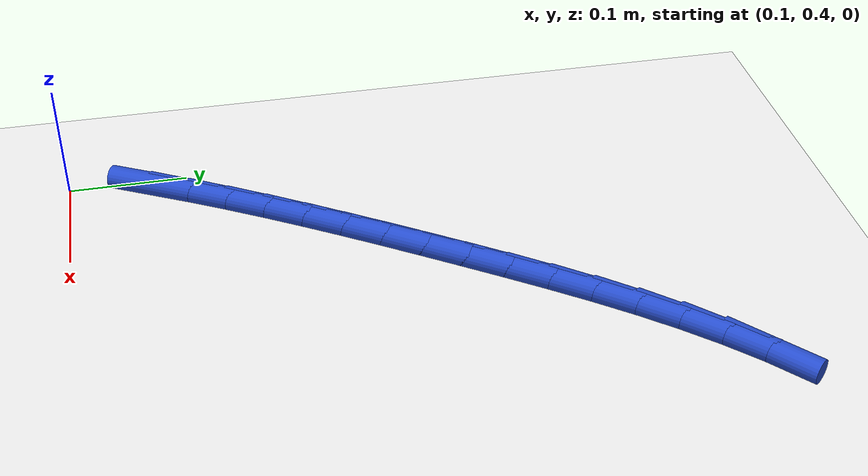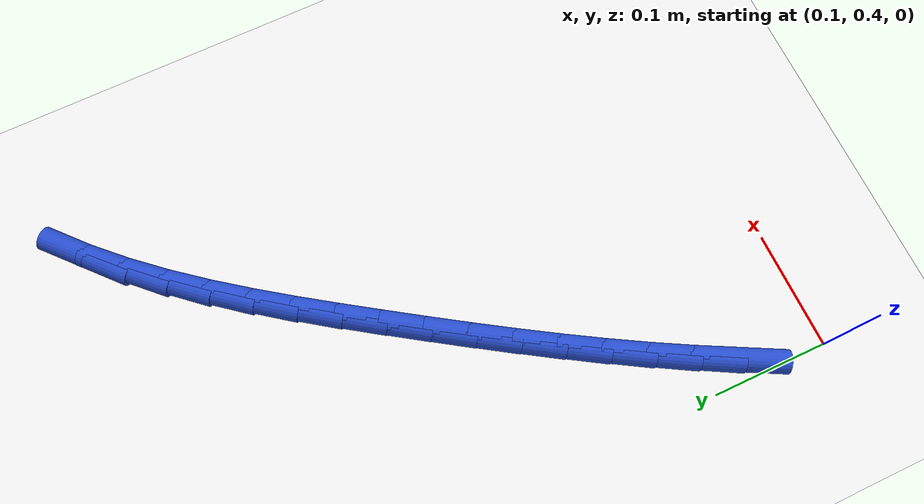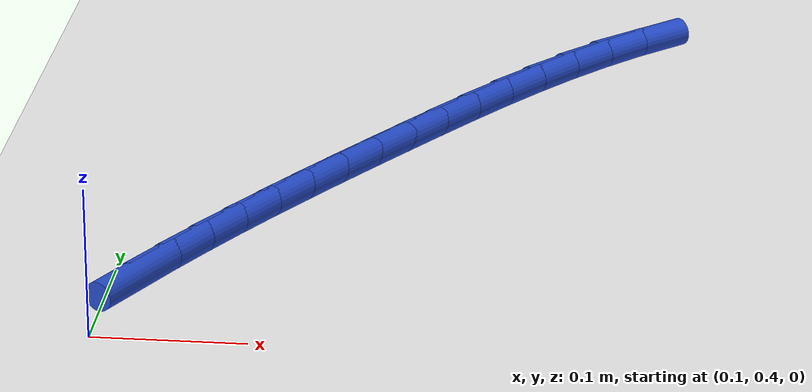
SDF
<sdf version="1.6">
 <world name="default">
  <model name="ground_plane">
   <static>1</static>
   <link name="link">
    <collision name="collision">
     <geometry><plane><normal>0 0 1</normal><size>100 100</size></plane></geometry>
     <surface><friction><ode><mu>100</mu><mu2>50</mu2></ode></friction></surface>
    </collision>
    <visual name="visual">
     <cast_shadows>0</cast_shadows>
     <geometry><plane><normal>0 0 1</normal><size>100 100</size></plane></geometry>
     <material>
      <script><uri>file://media/materials/scripts/gazebo.material</uri><name>Gazebo/WhiteGlow</name></script>
     </material>
    </visual>
   </link>
  </model>
  <model name="line">
   <link name="link_14">
    <pose>0.11797769030724309 0.47304769667638397 0.01 0 1.57 1.085753314319258</pose>
    <collision name="collision">
     <geometry><cylinder><radius>0.01</radius><length>0.08</length></cylinder></geometry>
    </collision>
    <visual name="visual">
     <material>
      <script><name>Gazebo/Blue</name><uri>file://media/materials/scripts/gazebo.material</uri></script>
     </material>
     <geometry><cylinder><radius>0.01</radius><length>0.08</length></cylinder></geometry>
    </visual>
   </link>
   <link name="link_15">
    <pose>0.13429874782241183 0.5040152346300001 0.01 0 1.57 1.063421792630666</pose>
    <collision name="collision">
     <geometry><cylinder><radius>0.01</radius><length>0.08</length></cylinder></geometry>
    </collision>
    <visual name="visual">
     <material>
      <script><name>Gazebo/Blue</name><uri>file://media/materials/scripts/gazebo.material</uri></script>
     </material>
     <geometry><cylinder><radius>0.01</radius><length>0.08</length></cylinder></geometry>
    </visual>
   </link>
   <link name="link_16">
    <pose>0.15136261698050008 0.5347102380555118 0.01 0 1.57 1.0436813862849401</pose>
    <collision name="collision">
     <geometry><cylinder><radius>0.01</radius><length>0.08</length></cylinder></geometry>
    </collision>
    <visual name="visual">
     <material>
      <script><name>Gazebo/Blue</name><uri>file://media/materials/scripts/gazebo.material</uri></script>
     </material>
     <geometry><cylinder><radius>0.01</radius><length>0.08</length></cylinder></geometry>
    </visual>
   </link>
   <link name="link_17">
    <pose>0.16909408276421878 0.5651741592560859 0.01 0 1.57 1.0265174313644143</pose>
    <collision name="collision">
     <geometry><cylinder><radius>0.01</radius><length>0.08</length></cylinder></geometry>
    </collision>
    <visual name="visual">
     <material>
      <script><name>Gazebo/Blue</name><uri>file://media/materials/scripts/gazebo.material</uri></script>
     </material>
     <geometry><cylinder><radius>0.01</radius><length>0.08</length></cylinder></geometry>
    </visual>
   </link>
   <link name="link_18">
    <pose>0.18741793015627908 0.59544845053489 0.01 0 1.57 1.0119060225093495</pose>
    <collision name="collision">
     <geometry><cylinder><radius>0.01</radius><length>0.08</length></cylinder></geometry>
    </collision>
    <visual name="visual">
     <material>
      <script><name>Gazebo/Blue</name><uri>file://media/materials/scripts/gazebo.material</uri></script>
     </material>
     <geometry><cylinder><radius>0.01</radius><length>0.08</length></cylinder></geometry>
    </visual>
   </link>
   <link name="link_19">
    <pose>0.206258944139392 0.625574564195091 0.01 0 1.57 0.9998175044152179</pose>
    <collision name="collision">
     <geometry><cylinder><radius>0.01</radius><length>0.08</length></cylinder></geometry>
    </collision>
    <visual name="visual">
     <material>
      <script><name>Gazebo/Blue</name><uri>file://media/materials/scripts/gazebo.material</uri></script>
     </material>
     <geometry><cylinder><radius>0.01</radius><length>0.08</length></cylinder></geometry>
    </visual>
   </link>
   <link name="link_20">
    <pose>0.22554190969626864 0.6555939525398561 0.01 0 1.57 0.9902193480513775</pose>
    <collision name="collision">
     <geometry><cylinder><radius>0.01</radius><length>0.08</length></cylinder></geometry>
    </collision>
    <visual name="visual">
     <material>
      <script><name>Gazebo/Blue</name><uri>file://media/materials/scripts/gazebo.material</uri></script>
     </material>
     <geometry><cylinder><radius>0.01</radius><length>0.08</length></cylinder></geometry>
    </visual>
   </link>
   <link name="link_21">
    <pose>0.24519161180962 0.6855480678723522 0.01 0 1.57 0.9830784254898436</pose>
    <collision name="collision">
     <geometry><cylinder><radius>0.01</radius><length>0.08</length></cylinder></geometry>
    </collision>
    <visual name="visual">
     <material>
      <script><name>Gazebo/Blue</name><uri>file://media/materials/scripts/gazebo.material</uri></script>
     </material>
     <geometry><cylinder><radius>0.01</radius><length>0.08</length></cylinder></geometry>
    </visual>
   </link>
   <link name="link_22">
    <pose>0.26513283546215727 0.7154783624957468 0.01 0 1.57 0.9776945148816585</pose>
    <collision name="collision">
     <geometry><cylinder><radius>0.01</radius><length>0.08</length></cylinder></geometry>
    </collision>
    <visual name="visual">
     <material>
      <script><name>Gazebo/Blue</name><uri>file://media/materials/scripts/gazebo.material</uri></script>
     </material>
     <geometry><cylinder><radius>0.01</radius><length>0.08</length></cylinder></geometry>
    </visual>
   </link>
   <link name="link_23">
    <pose>0.2853058584788981 0.7454061159215244 0.01 0 1.57 0.967878978523106</pose>
    <collision name="collision">
     <geometry><cylinder><radius>0.01</radius><length>0.08</length></cylinder></geometry>
    </collision>
    <visual name="visual">
     <material>
      <script><name>Gazebo/Blue</name><uri>file://media/materials/scripts/gazebo.material</uri></script>
     </material>
     <geometry><cylinder><radius>0.01</radius><length>0.08</length></cylinder></geometry>
    </visual>
   </link>
   <link name="link_24">
    <pose>0.3057938141007421 0.7751665996654674 0.01 0 1.57 0.9502201856580623</pose>
    <collision name="collision">
     <geometry><cylinder><radius>0.01</radius><length>0.08</length></cylinder></geometry>
    </collision>
    <visual name="visual">
     <material>
      <script><name>Gazebo/Blue</name><uri>file://media/materials/scripts/gazebo.material</uri></script>
     </material>
     <geometry><cylinder><radius>0.01</radius><length>0.08</length></cylinder></geometry>
    </visual>
   </link>
   <link name="link_25">
    <pose>0.3267569302952169 0.8044947023807894 0.01 0 1.57 0.9244615560032429</pose>
    <collision name="collision">
     <geometry><cylinder><radius>0.01</radius><length>0.08</length></cylinder></geometry>
    </collision>
    <visual name="visual">
     <material>
      <script><name>Gazebo/Blue</name><uri>file://media/materials/scripts/gazebo.material</uri></script>
     </material>
     <geometry><cylinder><radius>0.01</radius><length>0.08</length></cylinder></geometry>
    </visual>
   </link>
   <link name="link_26">
    <pose>0.3483561857329221 0.8331243352514734 0.01 0 1.57 0.8902568233275683</pose>
    <collision name="collision">
     <geometry><cylinder><radius>0.01</radius><length>0.08</length></cylinder></geometry>
    </collision>
    <visual name="visual">
     <material>
      <script><name>Gazebo/Blue</name><uri>file://media/materials/scripts/gazebo.material</uri></script>
     </material>
     <geometry><cylinder><radius>0.01</radius><length>0.08</length></cylinder></geometry>
    </visual>
   </link>
   <link name="link_27">
    <pose>0.37075255908445615 0.8607894094615016 0.01 0 1.57 0.8471797514674192</pose>
    <collision name="collision">
     <geometry><cylinder><radius>0.01</radius><length>0.08</length></cylinder></geometry>
    </collision>
    <visual name="visual">
     <material>
      <script><name>Gazebo/Blue</name><uri>file://media/materials/scripts/gazebo.material</uri></script>
     </material>
     <geometry><cylinder><radius>0.01</radius><length>0.08</length></cylinder></geometry>
    </visual>
   </link>
   <link name="link_28">
    <pose>0.3941070290204181 0.8872238361948566 0.01 0 1.57 0.7947914034711339</pose>
    <collision name="collision">
     <geometry><cylinder><radius>0.01</radius><length>0.08</length></cylinder></geometry>
    </collision>
    <visual name="visual">
     <material>
      <script><name>Gazebo/Blue</name><uri>file://media/materials/scripts/gazebo.material</uri></script>
     </material>
     <geometry><cylinder><radius>0.01</radius><length>0.08</length></cylinder></geometry>
    </visual>
   </link>
   <link name="link_29">
    <pose>0.41858057421140715 0.9121615266355211 0.01 0 1.57 0.7327427181305164</pose>
    <collision name="collision">
     <geometry><cylinder><radius>0.01</radius><length>0.08</length></cylinder></geometry>
    </collision>
    <visual name="visual">
     <material>
      <script><name>Gazebo/Blue</name><uri>file://media/materials/scripts/gazebo.material</uri></script>
     </material>
     <geometry><cylinder><radius>0.01</radius><length>0.08</length></cylinder></geometry>
    </visual>
   </link>
  </model>
 </world>
</sdf>
